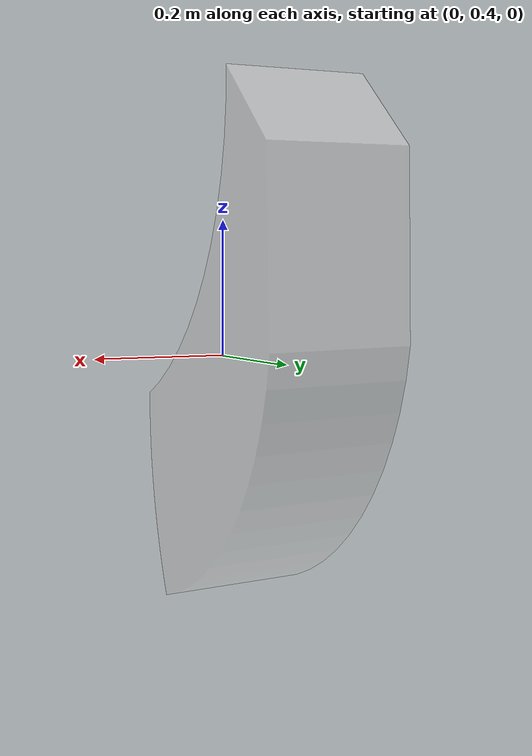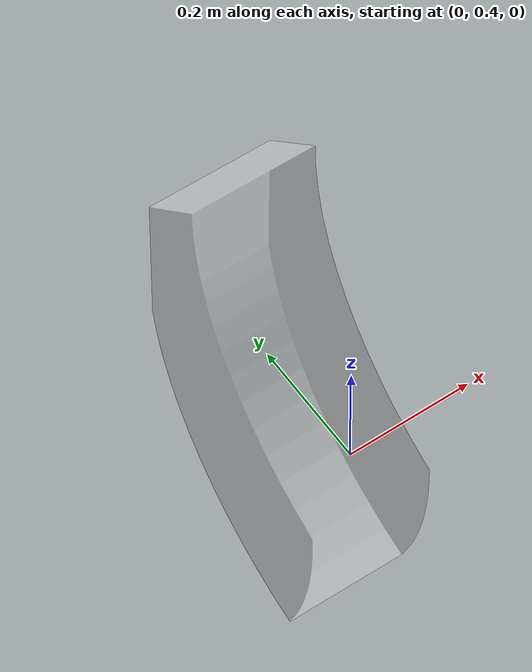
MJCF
<mujoco model="original-2">
  <default>
    <default class="visual">
      <geom group="2" type="mesh" contype="0" conaffinity="0"/>
    </default>
    <default class="collision">
      <geom group="3" type="mesh"/>
    </default>
  </default>
  <asset>
    <material name="material_0_0" specular="0.06666666666666667" shininess="0.03" rgba="0.8627450980392157 0.8627450980392157 0.8627450980392157 0.5019608"/>
    <mesh file="original-2.obj"/>
  </asset>
  <worldbody>
    <body name="original-2">
      <geom material="material_0_0" mesh="original-2" class="visual"/>
      <geom mesh="original-2" class="collision"/>
    </body>
  </worldbody>
</mujoco>
